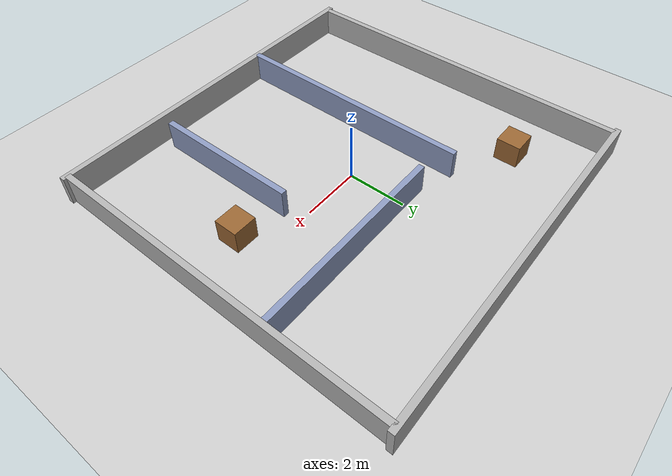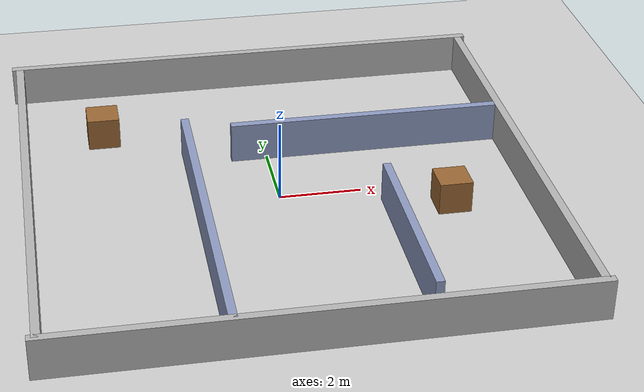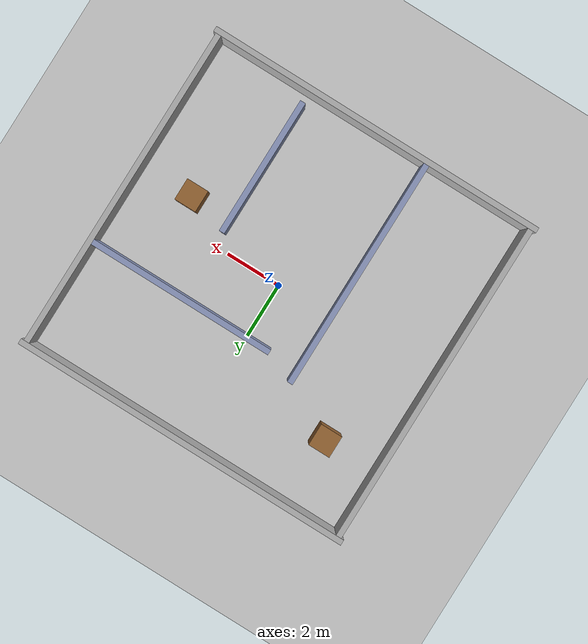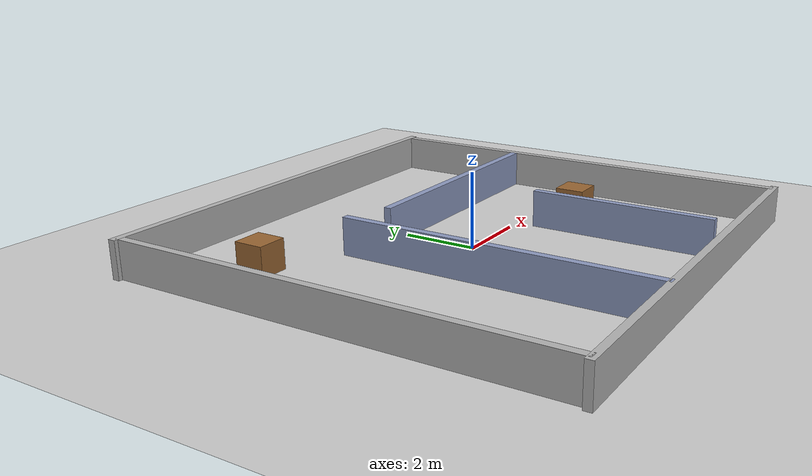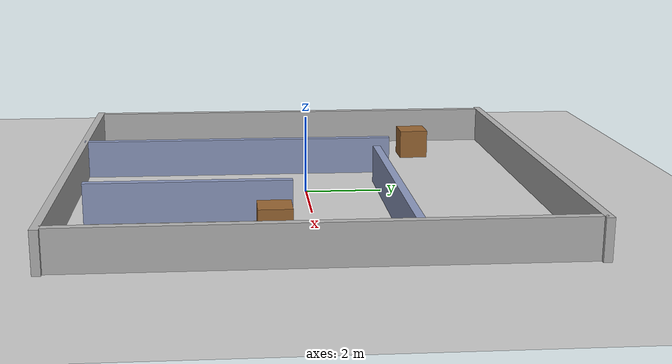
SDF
<?xml version="1.0" ?>
<sdf version="1.6">
  <world name="warehouse_12x12">

    <include>
      <uri>model://sun</uri>
    </include>
    <include>
      <uri>model://ground_plane</uri>
    </include>

    <physics name="default_physics" type="ode">
      <max_step_size>0.004</max_step_size>
      <real_time_factor>1.0</real_time_factor>
      <real_time_update_rate>250</real_time_update_rate>
    </physics>

    <model name="room_walls">
      <static>true</static>

      <!-- Outer perimeter: room is 12x12, inner faces near plus/minus 6 -->
      <link name="wall_north">
        <pose>0 6 0.5 0 0 0</pose>
        <collision name="c"><geometry><box><size>12.4 0.2 1.0</size></box></geometry></collision>
        <visual name="v"><geometry><box><size>12.4 0.2 1.0</size></box></geometry>
          <material><ambient>0.7 0.7 0.7 1</ambient><diffuse>0.7 0.7 0.7 1</diffuse></material>
        </visual>
      </link>
      <link name="wall_south">
        <pose>0 -6 0.5 0 0 0</pose>
        <collision name="c"><geometry><box><size>12.4 0.2 1.0</size></box></geometry></collision>
        <visual name="v"><geometry><box><size>12.4 0.2 1.0</size></box></geometry>
          <material><ambient>0.7 0.7 0.7 1</ambient><diffuse>0.7 0.7 0.7 1</diffuse></material>
        </visual>
      </link>
      <link name="wall_east">
        <pose>6 0 0.5 0 0 0</pose>
        <collision name="c"><geometry><box><size>0.2 12.0 1.0</size></box></geometry></collision>
        <visual name="v"><geometry><box><size>0.2 12.0 1.0</size></box></geometry>
          <material><ambient>0.7 0.7 0.7 1</ambient><diffuse>0.7 0.7 0.7 1</diffuse></material>
        </visual>
      </link>
      <link name="wall_west">
        <pose>-6 0 0.5 0 0 0</pose>
        <collision name="c"><geometry><box><size>0.2 12.0 1.0</size></box></geometry></collision>
        <visual name="v"><geometry><box><size>0.2 12.0 1.0</size></box></geometry>
          <material><ambient>0.7 0.7 0.7 1</ambient><diffuse>0.7 0.7 0.7 1</diffuse></material>
        </visual>
      </link>

      <!-- Interior partition 1: vertical wall near x=-2, doorway gap near north -->
      <link name="part1">
        <pose>-2 -1.75 0.5 0 0 0</pose>
        <collision name="c"><geometry><box><size>0.2 8.5 1.0</size></box></geometry></collision>
        <visual name="v"><geometry><box><size>0.2 8.5 1.0</size></box></geometry>
          <material><ambient>0.55 0.6 0.75 1</ambient><diffuse>0.55 0.6 0.75 1</diffuse></material>
        </visual>
      </link>

      <!-- Interior partition 2: horizontal wall near y=+2, gap near west corner -->
      <link name="part2">
        <pose>2.5 2 0.5 0 0 0</pose>
        <collision name="c"><geometry><box><size>6.8 0.2 1.0</size></box></geometry></collision>
        <visual name="v"><geometry><box><size>6.8 0.2 1.0</size></box></geometry>
          <material><ambient>0.55 0.6 0.75 1</ambient><diffuse>0.55 0.6 0.75 1</diffuse></material>
        </visual>
      </link>

      <!-- Interior partition 3: short wall in lower-right quadrant -->
      <link name="part3">
        <pose>2.5 -3 0.5 0 0 0</pose>
        <collision name="c"><geometry><box><size>0.2 5.0 1.0</size></box></geometry></collision>
        <visual name="v"><geometry><box><size>0.2 5.0 1.0</size></box></geometry>
          <material><ambient>0.55 0.6 0.75 1</ambient><diffuse>0.55 0.6 0.75 1</diffuse></material>
        </visual>
      </link>

      <!-- Obstacle crates -->
      <link name="crate1">
        <pose>4 -1 0.4 0 0 0</pose>
        <collision name="c"><geometry><box><size>0.8 0.8 0.8</size></box></geometry></collision>
        <visual name="v"><geometry><box><size>0.8 0.8 0.8</size></box></geometry>
          <material><ambient>0.6 0.4 0.2 1</ambient><diffuse>0.6 0.4 0.2 1</diffuse></material>
        </visual>
      </link>
      <link name="crate2">
        <pose>-4 3.5 0.4 0 0 0</pose>
        <collision name="c"><geometry><box><size>0.8 0.8 0.8</size></box></geometry></collision>
        <visual name="v"><geometry><box><size>0.8 0.8 0.8</size></box></geometry>
          <material><ambient>0.6 0.4 0.2 1</ambient><diffuse>0.6 0.4 0.2 1</diffuse></material>
        </visual>
      </link>

    </model>

  </world>
</sdf>
